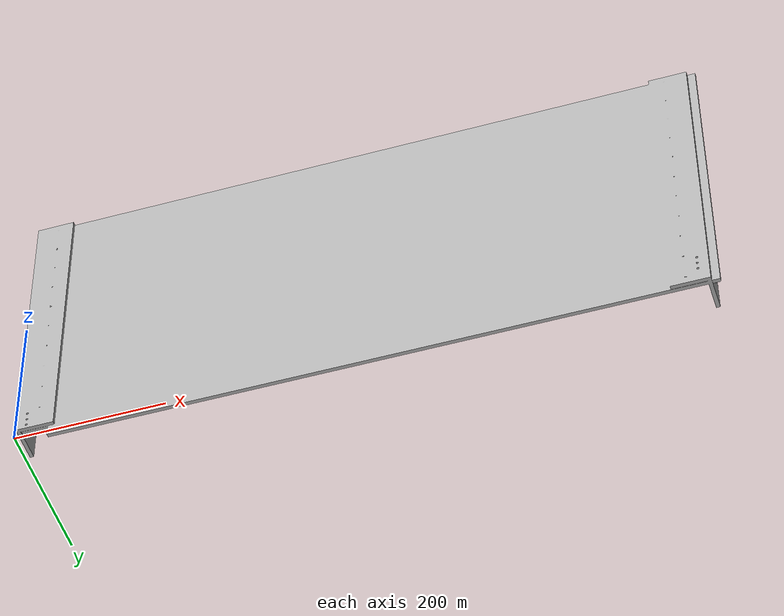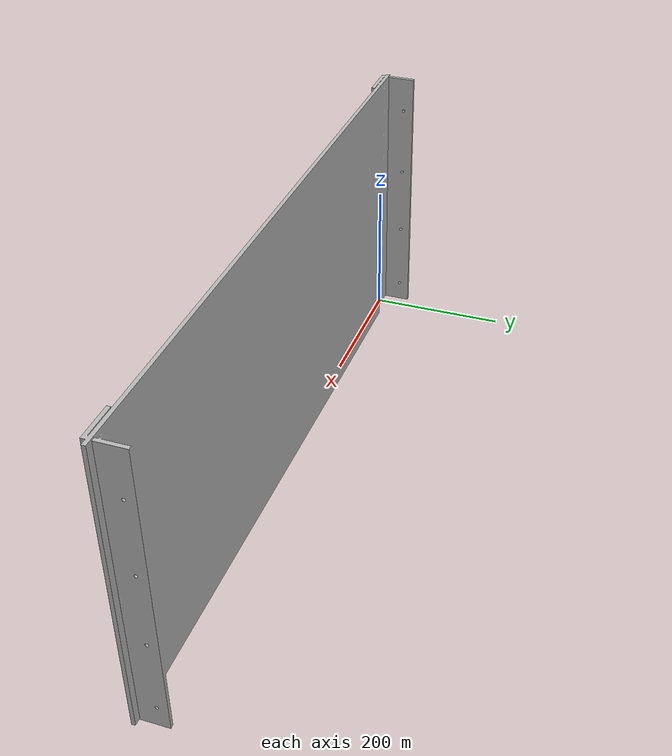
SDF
<?xml version="1.0" ?>
<sdf version="1.0">
<model name="board_2">
<static>true</static>
<link name="base">
<pose>0 0 0 0 0 0</pose>
<visual name="visual">
<geometry>
<mesh>
<uri>model://board_2/meshes/shelf_board_2.stl</uri>
</mesh>
</geometry></visual>
<collision name="board_2_collision">
<geometry>
<mesh>
<uri>model://board_2/meshes/shelf_board_2.stl</uri>
</mesh>
</geometry>
<surface>
        <friction>
          <ode>
            <mu>1.00</mu>
            <mu2>1.00</mu2>
          </ode>
        </friction>
      </surface>
</collision>
</link>
</model>
</sdf>
